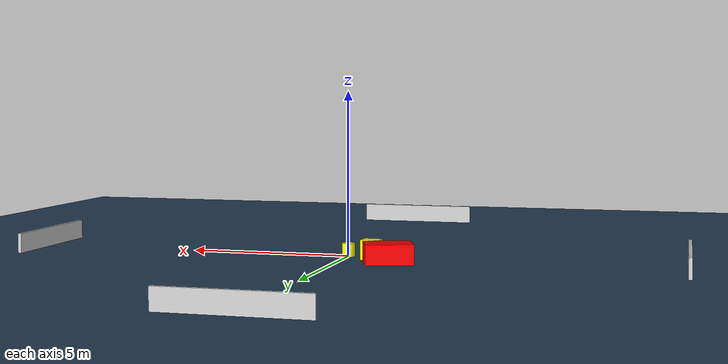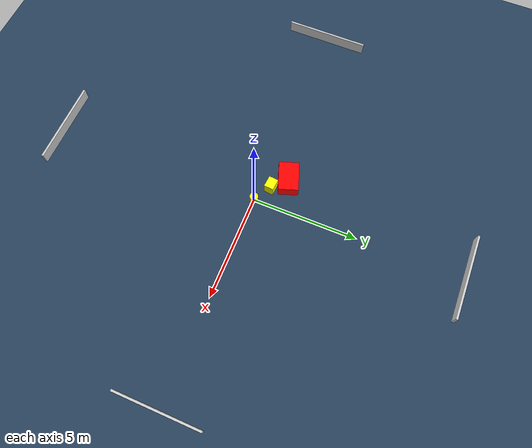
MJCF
<?xml version="1.0" ?>
<mujoco model="generated_environment">
  <option timestep="0.01" integrator="RK4" cone="elliptic"/>
  <default>
    <geom density="1"/>
  </default>
  <asset>
    <texture builtin="gradient" height="3072" name="skybox" rgb1="0.3 0.5 0.7" rgb2="0 0 0" type="skybox" width="512"/>
    <texture builtin="checker" height="300" name="groundplane" rgb1="0.2 0.3 0.4" rgb2="0.1 0.2 0.3" type="2d" width="300"/>
    <material name="groundplane" reflectance="0.2" texrepeat="5 5" texture="groundplane"/>
  </asset>
  <worldbody>
    <light dir="0 0 -1" directional="true" pos="0 0 1.5"/>
    <geom condim="3" friction="0.5 0.005 0.001" material="groundplane" name="floor" pos="0 0 0" size="0 0 0.05" type="plane"/>
    <body name="walls">
      <geom name="wall_1" condim="4" pos="-10.0 0.0 0.3" rgba="0.800000011920929 0.800000011920929 0.800000011920929 1.0" size="0.05 2.0 0.3" type="box"/>
      <geom name="wall_2" condim="4" pos="10.0 0.0 0.3" rgba="0.800000011920929 0.800000011920929 0.800000011920929 1.0" size="0.05 2.0 0.3" type="box"/>
      <geom name="wall_3" condim="4" pos="0.0 -10.0 0.3" rgba="0.800000011920929 0.800000011920929 0.800000011920929 1.0" size="2.0 0.05 0.3" type="box"/>
      <geom name="wall_4" condim="4" pos="0.0 10.0 0.3" rgba="0.800000011920929 0.800000011920929 0.800000011920929 1.0" size="2.0 0.05 0.3" type="box"/>
    </body>
    <body name="robot">
      <joint name="joint_x" type="slide" pos="0 0 0" axis="1 0 0"/>
      <joint name="joint_y" type="slide" pos="0 0 0" axis="0 1 0"/>
      <geom name="robot" type="cylinder" pos="0.0 0.0 0.2" size="0.2 0.2 0.0" mass="5.0" friction="1.0 0.005 0.0001" condim="4" rgba="1.0 1.0 0.0 1.0"/>
    </body>
    <body name="obstacle_1_movable">
      <geom name="obstacle_1_movable" condim="4" pos="-0.8490591561485651 0.5089818939201854 0.3" euler="0 0 174.6186624771176" friction="0.0 0.005 0.001" rgba="1.0 1.0 0.0 1.0" size="0.2753373886507542 0.22563153881281575 0.3" type="box" mass="0.1"/>
      <joint type="free"/>
    </body>
    <body name="obstacle_2_static">
      <geom name="obstacle_2_static" condim="4" pos="-1.5013215326997535 1.1246764824003397 0.3" euler="0 0 289.4220188172098" friction="0.0 0.005 0.001" rgba="1.0 0.0 0.0 1.0" size="0.47504531526322563 0.7044463773480871 0.3" type="box"/>
    </body>
  </worldbody>
  <actuator>
    <motor name="actuator_x" joint="joint_x" gear="1" ctrlrange="-1 1"/>
    <motor name="actuator_y" joint="joint_y" gear="1" ctrlrange="-1 1"/>
  </actuator>
</mujoco>
